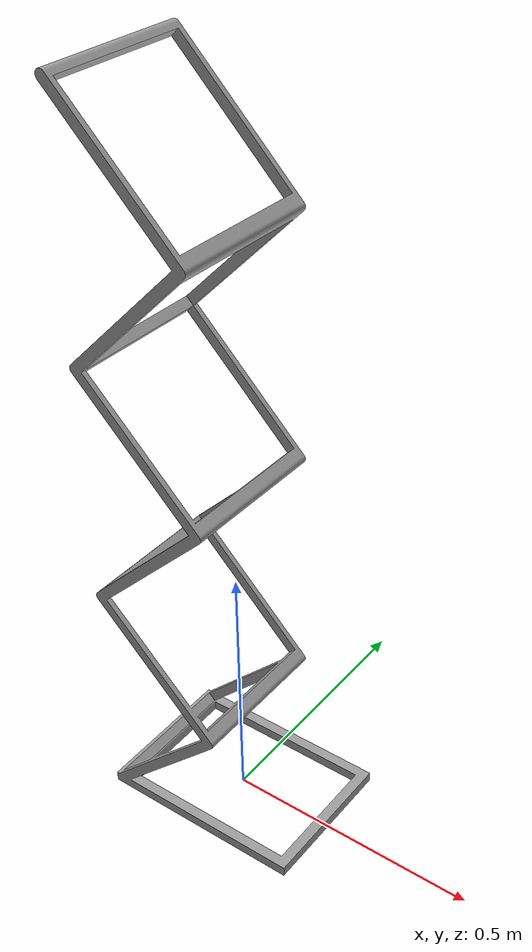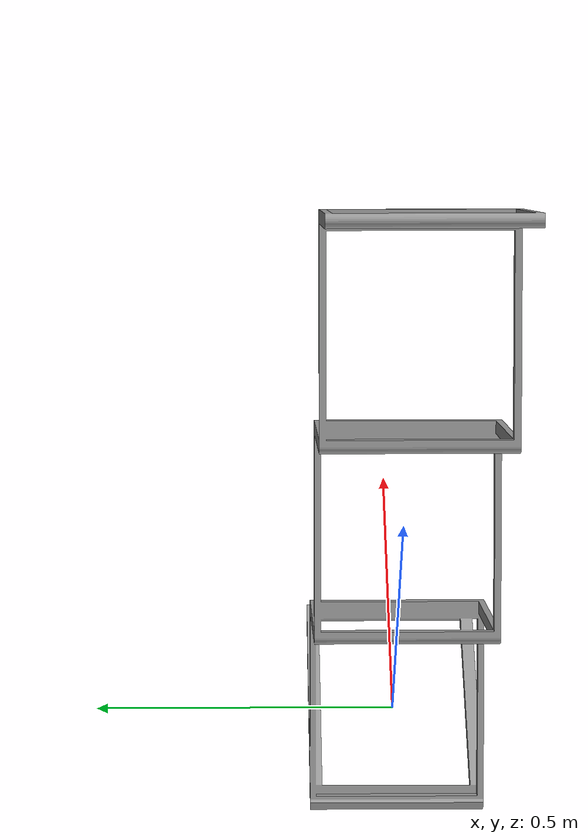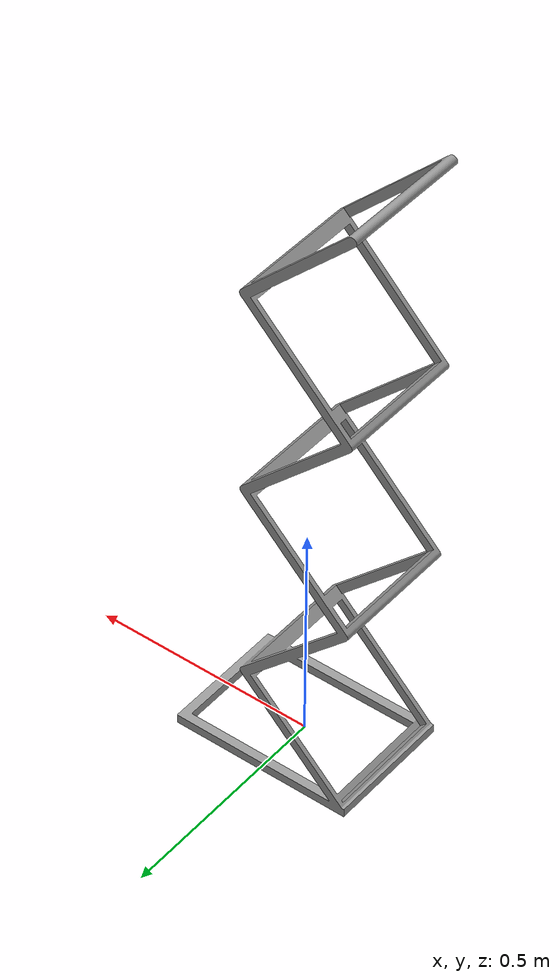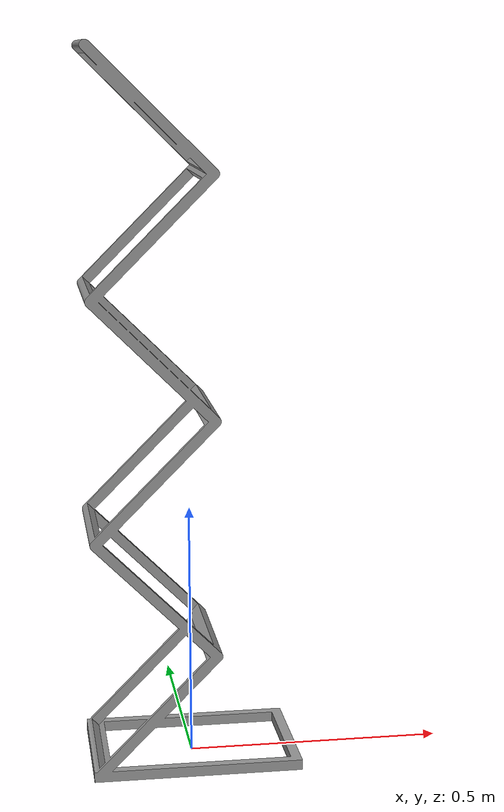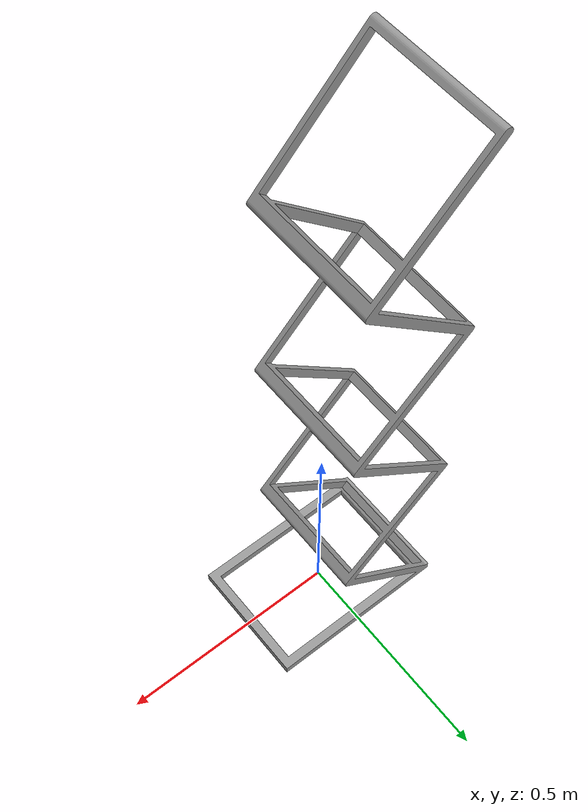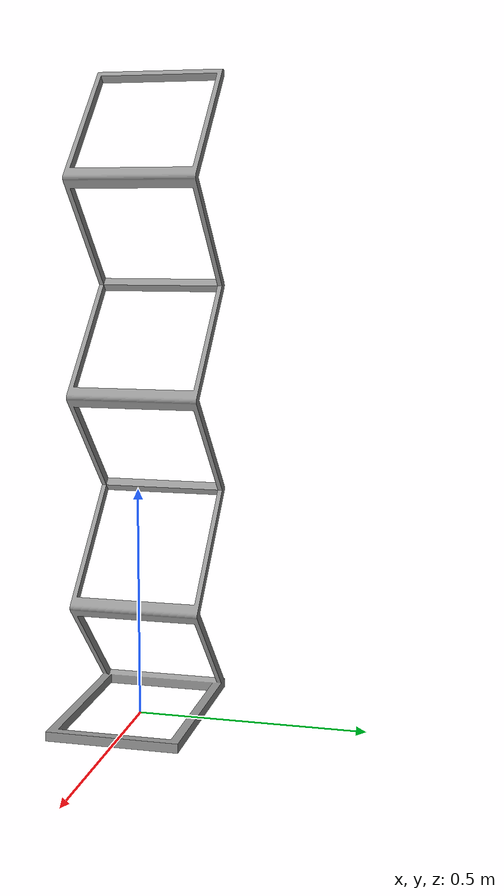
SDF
<?xml version="1.0" ?>

<sdf version="1.5">
  <model name="rgiro_haitian_magazine_rack">
    <static>1</static>
    <link name="link">
      <visual name="visual">
        <geometry>
          <mesh>
            <uri>model://rgiro_haitian_magazine_rack/meshes/rgiro_haitian_magazine_rack.dae</uri>
          </mesh>
        </geometry>
        <material>
          <script>
            <uri>file://media/materials/scripts/gazebo.material</uri>
            <name>Gazebo/Grey</name>
          </script>
        </material>
      </visual>
      <collision name="collision">
        <geometry>
          <mesh>
            <uri>model://rgiro_haitian_magazine_rack/meshes/rgiro_haitian_magazine_rack.dae</uri>
          </mesh>
        </geometry>
      </collision>
    </link>
  </model>
</sdf>
